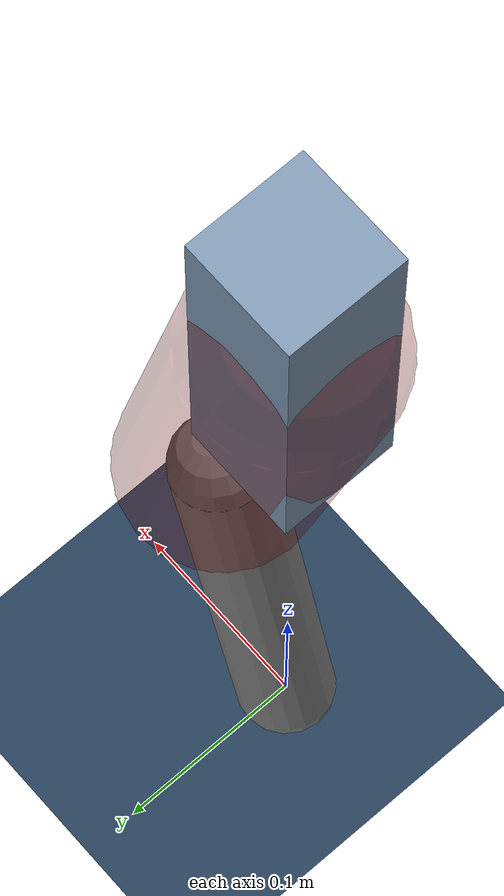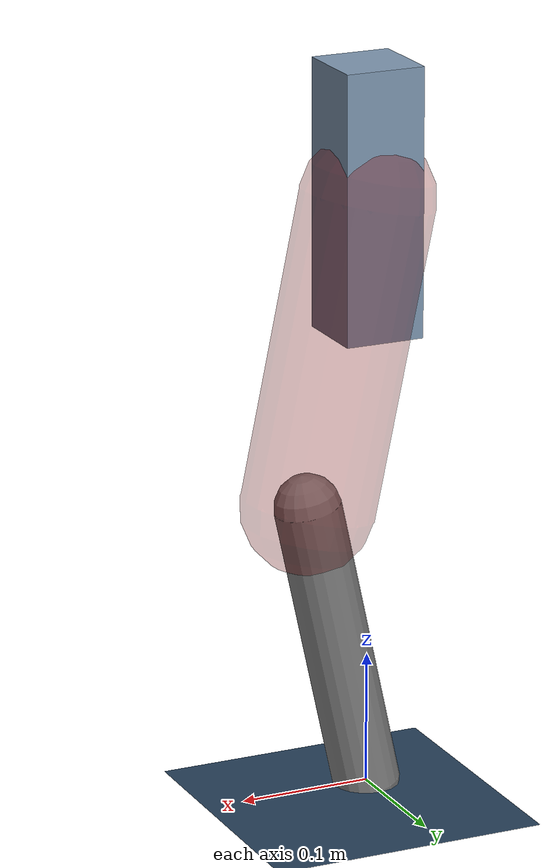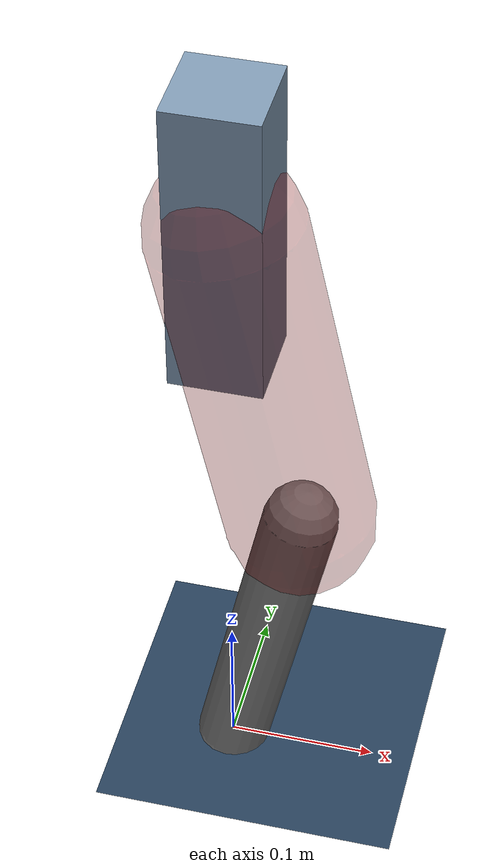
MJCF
<mujoco model="Hopper2D">
	<compiler inertiafromgeom="true" angle="radian" />
	<option timestep="0.001" integrator="implicit" cone="elliptic" solver="Newton" tolerance="1e-10" />

	<default>
		<geom contype="1" conaffinity="1" condim="3" friction="2 0.005 0.0001" solref="0.005 1" />
		<joint limited="true" damping="0.1" />
	</default>

	<asset>
		<texture name="skybox" type="skybox" builtin="gradient" rgb1=".4 .6 .8" rgb2="0 0 0" width="800" height="800" />
		<texture name="grid" type="2d" builtin="checker" rgb1=".1 .2 .3" rgb2=".2 .3 .4" width="300" height="300" mark="edge" markrgb=".2 .3 .4" />
		<material name="ground" texture="grid" texrepeat="1 1" texuniform="true" reflectance="0.1" />
		<material name="leg" rgba="0.5 0.6 0.7 1" />
	</asset>

	<worldbody>

		<geom name="floor" type="plane" size="5 5 0.25" material="ground" />

		<light directional="false" diffuse="0.8 0.8 0.8" specular="0.3 0.3 0.3" pos="0 0 2" dir="0 0 -1" />
		<light mode="targetbodycom" target="base" directional="false" diffuse="0.8 0.8 0.8" specular="0.3 0.3 0.3" pos="0 0 2" dir="0 0 -1" />

		<camera name="fixed" pos="0 -2 1" xyaxes="1 0 0 0 0 1" />
		<camera name="tracking" mode="trackcom" pos="0 -3 1" />

		<body name="root" pos="0 0 0.44786731518226564">
			<joint name="slide_x" type="slide" axis="1 0 0" range="-100 100" />
			<joint name="slide_z" type="slide" axis="0 0 1" range="0 10" />

			<body name="base" pos="0 0 0">
				<geom name="torso" type="box" size="0.03 0.03 0.1" mass="3.482" material="leg" />

				<body name="link1" pos="0 0 0" euler="0 1.3637428655841508 0">
					<joint type="hinge" axis="0 -1 0" pos="0 0 0" name="hinge1" limited="true" range="-3.14 3.14" stiffness="0" damping="0.1" />
					<geom name="thigh" type="capsule" fromto="0 0 0 0.23145577014065633 0 0" size="0.05" rgba="0.5 0 0 0.3" mass="0.8087394253516408" />

					<body name="link2" pos="0.23145577014065633 0 0" euler="0 0.41878925958014185 0">
						<joint type="hinge" axis="0 -1 0" pos="0 0 0" name="hinge2" limited="true" range="-3.14 3.14" stiffness="0" damping="0.1" />
						<geom name="shank" type="capsule" fromto="0 0 0 0.22641154504160935 0 0" size="0.025" mass="0.42302923603328746" />

					</body>
				</body>
			</body>
		</body>
	</worldbody>

	<actuator>
		<motor name="torque1" joint="hinge1" ctrlrange="-77.05077416394904 77.05077416394904" ctrllimited="true" gear="1" />
		<motor name="torque2" joint="hinge2" ctrlrange="-221.6717403399452 221.6717403399452" ctrllimited="true" gear="1" />
	</actuator>
</mujoco>
